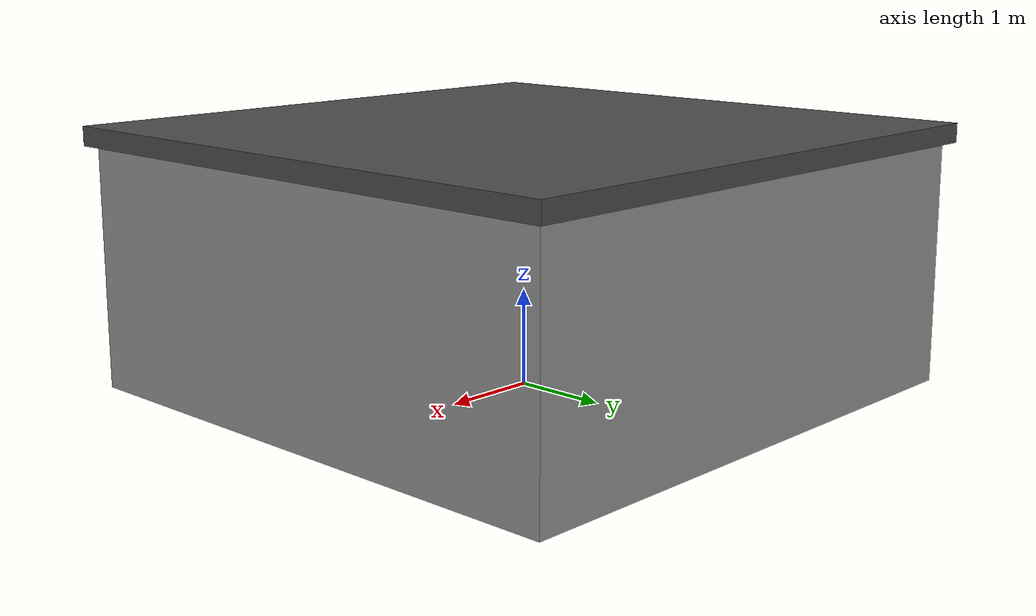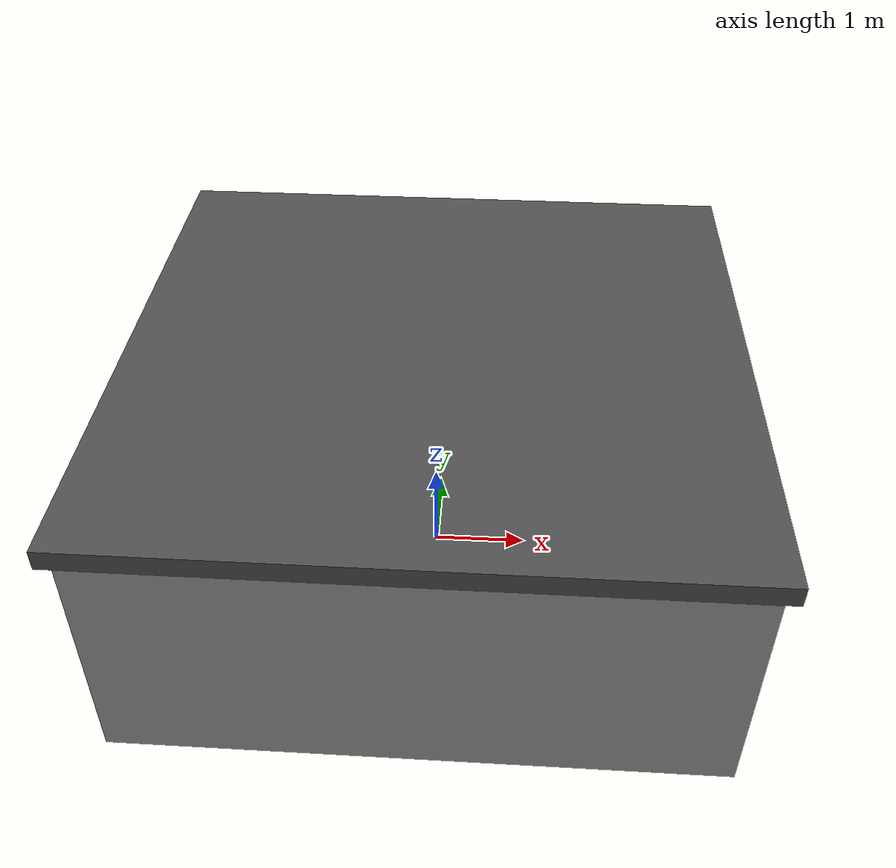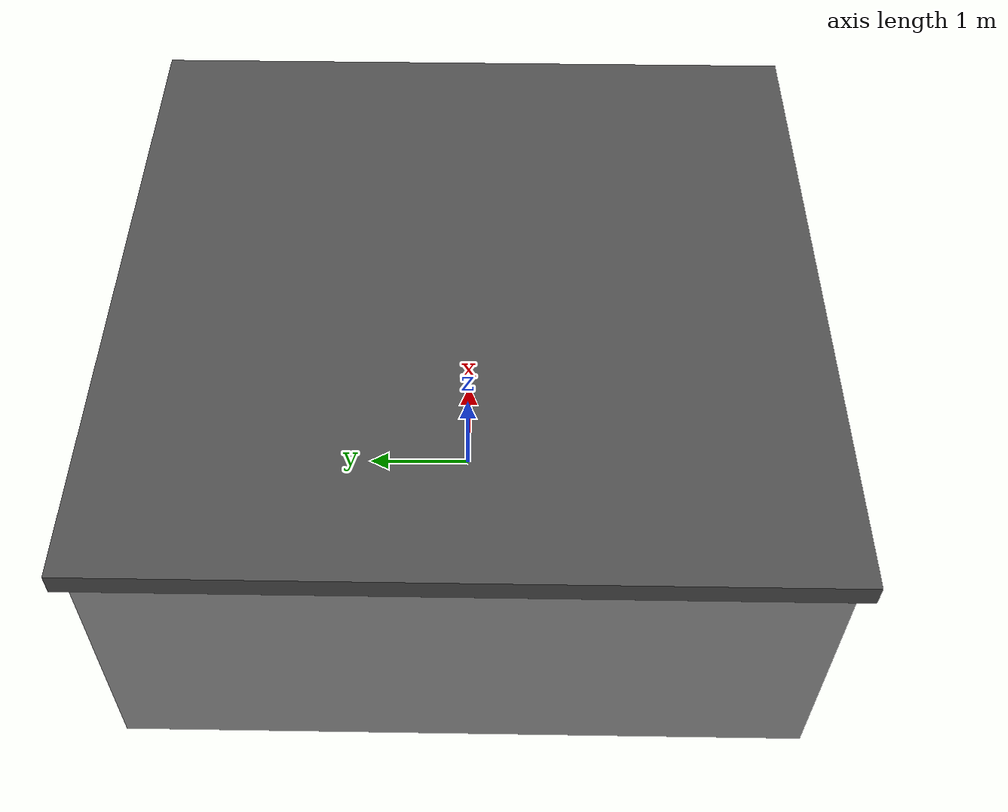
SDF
<?xml version="1.0"?>
<sdf version="1.6">
  <model name="warehouse">
    <static>true</static>
    <link name="warehouse_link">
      <collision name="warehouse_collision">
        <pose>0 0 1.25 0 0 0</pose>
        <geometry>
          <box>
            <size>6 6 2.5</size>
          </box>
        </geometry>
      </collision>

      <visual name="warehouse_visual">
        <pose>0 0 1.25 0 0 0</pose>
        <geometry>
          <box>
            <size>6 6 2.5</size>
          </box>
        </geometry>
        <material>
          <ambient>0.45 0.45 0.45 1</ambient>
          <diffuse>0.58 0.58 0.58 1</diffuse>
          <specular>0.08 0.08 0.08 1</specular>
        </material>
      </visual>

      <visual name="warehouse_roof_visual">
        <pose>0 0 2.60 0 0 0</pose>
        <geometry>
          <box>
            <size>6.2 6.2 0.20</size>
          </box>
        </geometry>
        <material>
          <ambient>0.20 0.20 0.20 1</ambient>
          <diffuse>0.30 0.30 0.30 1</diffuse>
          <specular>0.05 0.05 0.05 1</specular>
        </material>
      </visual>
    </link>
  </model>
</sdf>
